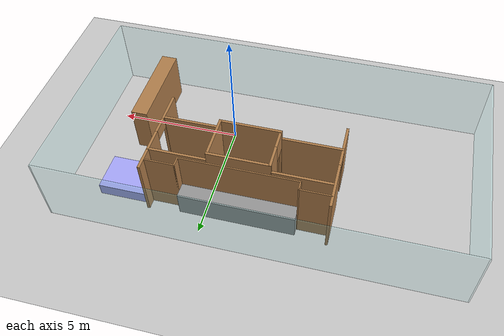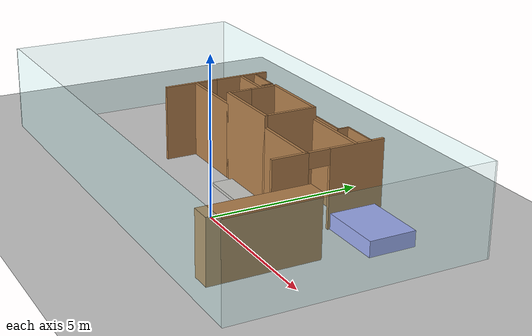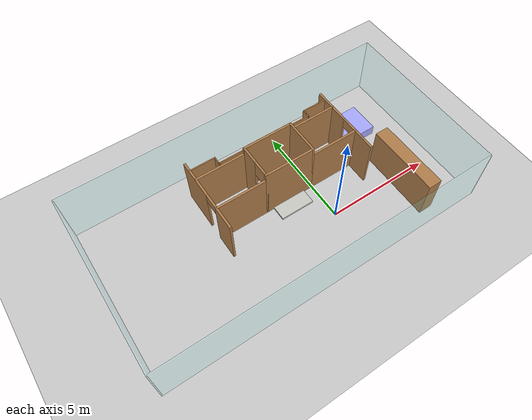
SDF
<sdf version="1.6">
 <world name="default">
  <model name="ground_plane">
   <static>1</static>
   <link name="link">
    <collision name="collision">
     <geometry><plane><normal>0 0 1</normal><size>100 100</size></plane></geometry>
     <surface><friction><ode><mu>100</mu><mu2>50</mu2></ode></friction></surface>
    </collision>
    <visual name="visual">
     <cast_shadows>0</cast_shadows>
     <geometry><plane><normal>0 0 1</normal><size>100 100</size></plane></geometry>
     <material>
      <script><uri>file://media/materials/scripts/gazebo.material</uri><name>Gazebo/Grey</name></script>
     </material>
    </visual>
   </link>
  </model>
  <model name="Farnsworth_House">
   <link name="Wall_0">
    <pose>0 4.05 0 0 -0 0</pose>
    <inertial>
     <mass>1</mass>
     <inertia><ixx>1</ixx><ixy>0</ixy><ixz>0</ixz><iyy>1</iyy><iyz>0</iyz><izz>1</izz></inertia>
    </inertial>
    <visual name="Wall_0_Visual">
     <pose>0 0 1.435 0 -0 0</pose>
     <geometry><box><size>15.9002 0.05 2.87</size></box></geometry>
     <material>
      <script><uri>file://media/materials/scripts/gazebo.material</uri><name>Gazebo/Grey</name></script>
      <ambient>0.6 1 1 1</ambient>
      <shader type="pixel"><normal_map>__default__</normal_map></shader>
      <diffuse>0.7 0.7 0.7 1</diffuse>
      <specular>0.01 0.01 0.01 1</specular>
      <emissive>0 0 0 1</emissive>
     </material>
     <meta><layer>0</layer></meta>
     <transparency>0.85</transparency>
    </visual>
    <collision name="Wall_0_Collision">
     <pose>0 0 1.435 0 -0 0</pose>
     <geometry><box><size>15.9002 0.05 2.87</size></box></geometry>
     <surface>
      <friction>
       <ode><mu>1</mu><mu2>1</mu2><fdir1>0 0 0</fdir1><slip1>0</slip1><slip2>0</slip2></ode>
       <torsional>
        <coefficient>1</coefficient>
        <patch_radius>0</patch_radius>
        <surface_radius>0</surface_radius>
        <use_patch_radius>1</use_patch_radius>
        <ode><slip>0</slip></ode>
       </torsional>
      </friction>
      <bounce><restitution_coefficient>0</restitution_coefficient><threshold>1e+06</threshold></bounce>
      <contact>
       <collide_without_contact>0</collide_without_contact>
       <collide_without_contact_bitmask>1</collide_without_contact_bitmask>
       <collide_bitmask>1</collide_bitmask>
       <ode>
        <soft_cfm>0</soft_cfm>
        <soft_erp>0.2</soft_erp>
        <kp>1e+13</kp>
        <kd>1</kd>
        <max_vel>0.01</max_vel>
        <min_depth>0</min_depth>
       </ode>
       <bullet>
        <split_impulse>1</split_impulse>
        <split_impulse_penetration_threshold>-0.01</split_impulse_penetration_threshold>
        <soft_cfm>0</soft_cfm>
        <soft_erp>0.2</soft_erp>
        <kp>1e+13</kp>
        <kd>1</kd>
       </bullet>
      </contact>
     </surface>
    </collision>
   </link>
   <link name="Wall_1">
    <pose>7.925 0 0 0 0 -1.5708</pose>
    <inertial>
     <mass>1</mass>
     <inertia><ixx>1</ixx><ixy>0</ixy><ixz>0</ixz><iyy>1</iyy><iyz>0</iyz><izz>1</izz></inertia>
    </inertial>
    <visual name="Wall_1_Visual">
     <pose>0 0 1.435 0 -0 0</pose>
     <geometry><box><size>8.15019 0.05 2.87</size></box></geometry>
     <material>
      <script><uri>file://media/materials/scripts/gazebo.material</uri><name>Gazebo/Grey</name></script>
      <ambient>0.6 1 1 1</ambient>
      <shader type="pixel"><normal_map>__default__</normal_map></shader>
      <diffuse>0.7 0.7 0.7 1</diffuse>
      <specular>0.01 0.01 0.01 1</specular>
      <emissive>0 0 0 1</emissive>
     </material>
     <meta><layer>0</layer></meta>
     <transparency>0.85</transparency>
    </visual>
    <collision name="Wall_1_Collision">
     <pose>0 0 1.435 0 -0 0</pose>
     <geometry><box><size>8.15019 0.05 2.87</size></box></geometry>
     <surface>
      <friction>
       <ode><mu>1</mu><mu2>1</mu2><fdir1>0 0 0</fdir1><slip1>0</slip1><slip2>0</slip2></ode>
       <torsional>
        <coefficient>1</coefficient>
        <patch_radius>0</patch_radius>
        <surface_radius>0</surface_radius>
        <use_patch_radius>1</use_patch_radius>
        <ode><slip>0</slip></ode>
       </torsional>
      </friction>
      <bounce><restitution_coefficient>0</restitution_coefficient><threshold>1e+06</threshold></bounce>
      <contact>
       <collide_without_contact>0</collide_without_contact>
       <collide_without_contact_bitmask>1</collide_without_contact_bitmask>
       <collide_bitmask>1</collide_bitmask>
       <ode>
        <soft_cfm>0</soft_cfm>
        <soft_erp>0.2</soft_erp>
        <kp>1e+13</kp>
        <kd>1</kd>
        <max_vel>0.01</max_vel>
        <min_depth>0</min_depth>
       </ode>
       <bullet>
        <split_impulse>1</split_impulse>
        <split_impulse_penetration_threshold>-0.01</split_impulse_penetration_threshold>
        <soft_cfm>0</soft_cfm>
        <soft_erp>0.2</soft_erp>
        <kp>1e+13</kp>
        <kd>1</kd>
       </bullet>
      </contact>
     </surface>
    </collision>
   </link>
   <link name="Wall_10">
    <pose>0.851 0.36 0 0 -0 0</pose>
    <visual name="Wall_10_Visual">
     <pose>0 0 1.435 0 -0 0</pose>
     <geometry><box><size>2.45 0.1 2.87</size></box></geometry>
     <material>
      <script><uri>file://media/materials/scripts/gazebo.material</uri><name>Gazebo/Wood</name></script>
      <ambient>1 1 1 1</ambient>
      <shader type="pixel"/>
      <diffuse>1 1 1 1</diffuse>
      <specular>0.2 0.2 0.2 1</specular>
      <emissive>0 0 0 1</emissive>
     </material>
     <meta><layer>0</layer></meta>
    </visual>
    <collision name="Wall_10_Collision">
     <pose>0 0 1.435 0 -0 0</pose>
     <geometry><box><size>2.45 0.1 2.87</size></box></geometry>
     <surface>
      <friction>
       <ode><mu>1</mu><mu2>1</mu2><fdir1>0 0 0</fdir1><slip1>0</slip1><slip2>0</slip2></ode>
       <torsional>
        <coefficient>1</coefficient>
        <patch_radius>0</patch_radius>
        <surface_radius>0</surface_radius>
        <use_patch_radius>1</use_patch_radius>
        <ode><slip>0</slip></ode>
       </torsional>
      </friction>
      <bounce><restitution_coefficient>0</restitution_coefficient><threshold>1e+06</threshold></bounce>
      <contact>
       <collide_without_contact>0</collide_without_contact>
       <collide_without_contact_bitmask>1</collide_without_contact_bitmask>
       <collide_bitmask>1</collide_bitmask>
       <ode>
        <soft_cfm>0</soft_cfm>
        <soft_erp>0.2</soft_erp>
        <kp>1e+13</kp>
        <kd>1</kd>
        <max_vel>0.01</max_vel>
        <min_depth>0</min_depth>
       </ode>
       <bullet>
        <split_impulse>1</split_impulse>
        <split_impulse_penetration_threshold>-0.01</split_impulse_penetration_threshold>
        <soft_cfm>0</soft_cfm>
        <soft_erp>0.2</soft_erp>
        <kp>1e+13</kp>
        <kd>1</kd>
       </bullet>
      </contact>
     </surface>
    </collision>
   </link>
   <link name="Wall_11">
    <pose>3.179 0.36 0 0 -0 0</pose>
    <visual name="Wall_11_Visual">
     <pose>0 0 1.25 0 -0 0</pose>
     <geometry><box><size>2.406 0.1 2.5</size></box></geometry>
     <material>
      <script><uri>file://media/materials/scripts/gazebo.material</uri><name>Gazebo/Wood</name></script>
      <ambient>1 1 1 1</ambient>
      <shader type="pixel"/>
      <diffuse>1 1 1 1</diffuse>
      <specular>0.2 0.2 0.2 1</specular>
      <emissive>0 0 0 1</emissive>
     </material>
     <meta><layer>0</layer></meta>
    </visual>
    <collision name="Wall_11_Collision">
     <pose>0 0 1.25 0 -0 0</pose>
     <geometry><box><size>2.406 0.1 2.5</size></box></geometry>
     <surface>
      <friction>
       <ode><mu>1</mu><mu2>1</mu2><fdir1>0 0 0</fdir1><slip1>0</slip1><slip2>0</slip2></ode>
       <torsional>
        <coefficient>1</coefficient>
        <patch_radius>0</patch_radius>
        <surface_radius>0</surface_radius>
        <use_patch_radius>1</use_patch_radius>
        <ode><slip>0</slip></ode>
       </torsional>
      </friction>
      <bounce><restitution_coefficient>0</restitution_coefficient><threshold>1e+06</threshold></bounce>
      <contact>
       <collide_without_contact>0</collide_without_contact>
       <collide_without_contact_bitmask>1</collide_without_contact_bitmask>
       <collide_bitmask>1</collide_bitmask>
       <ode>
        <soft_cfm>0</soft_cfm>
        <soft_erp>0.2</soft_erp>
        <kp>1e+13</kp>
        <kd>1</kd>
        <max_vel>0.01</max_vel>
        <min_depth>0</min_depth>
       </ode>
       <bullet>
        <split_impulse>1</split_impulse>
        <split_impulse_penetration_threshold>-0.01</split_impulse_penetration_threshold>
        <soft_cfm>0</soft_cfm>
        <soft_erp>0.2</soft_erp>
        <kp>1e+13</kp>
        <kd>1</kd>
       </bullet>
      </contact>
     </surface>
    </collision>
   </link>
   <link name="Wall_13">
    <pose>0.851 2.013 0 0 -0 0</pose>
    <visual name="Wall_13_Visual">
     <pose>0 0 1.435 0 -0 0</pose>
     <geometry><box><size>2.45 0.1 2.87</size></box></geometry>
     <material>
      <script><uri>file://media/materials/scripts/gazebo.material</uri><name>Gazebo/Wood</name></script>
      <ambient>1 1 1 1</ambient>
      <shader type="pixel"/>
      <diffuse>1 1 1 1</diffuse>
      <specular>0.2 0.2 0.2 1</specular>
      <emissive>0 0 0 1</emissive>
     </material>
     <meta><layer>0</layer></meta>
    </visual>
    <collision name="Wall_13_Collision">
     <pose>0 0 1.435 0 -0 0</pose>
     <geometry><box><size>2.45 0.1 2.87</size></box></geometry>
     <surface>
      <friction>
       <ode><mu>1</mu><mu2>1</mu2><fdir1>0 0 0</fdir1><slip1>0</slip1><slip2>0</slip2></ode>
       <torsional>
        <coefficient>1</coefficient>
        <patch_radius>0</patch_radius>
        <surface_radius>0</surface_radius>
        <use_patch_radius>1</use_patch_radius>
        <ode><slip>0</slip></ode>
       </torsional>
      </friction>
      <bounce><restitution_coefficient>0</restitution_coefficient><threshold>1e+06</threshold></bounce>
      <contact>
       <collide_without_contact>0</collide_without_contact>
       <collide_without_contact_bitmask>1</collide_without_contact_bitmask>
       <collide_bitmask>1</collide_bitmask>
       <ode>
        <soft_cfm>0</soft_cfm>
        <soft_erp>0.2</soft_erp>
        <kp>1e+13</kp>
        <kd>1</kd>
        <max_vel>0.01</max_vel>
        <min_depth>0</min_depth>
       </ode>
       <bullet>
        <split_impulse>1</split_impulse>
        <split_impulse_penetration_threshold>-0.01</split_impulse_penetration_threshold>
        <soft_cfm>0</soft_cfm>
        <soft_erp>0.2</soft_erp>
        <kp>1e+13</kp>
        <kd>1</kd>
       </bullet>
      </contact>
     </surface>
    </collision>
   </link>
   <link name="Wall_14">
    <pose>2.026 1.1865 0 0 0 -1.5708</pose>
    <visual name="Wall_14_Visual">
     <pose>0 0 1.435 0 -0 0</pose>
     <geometry><box><size>1.753 0.1 2.87</size></box></geometry>
     <material>
      <script><uri>file://media/materials/scripts/gazebo.material</uri><name>Gazebo/Wood</name></script>
      <ambient>1 1 1 1</ambient>
      <shader type="pixel"/>
      <diffuse>1 1 1 1</diffuse>
      <specular>0.2 0.2 0.2 1</specular>
      <emissive>0 0 0 1</emissive>
     </material>
     <meta><layer>0</layer></meta>
    </visual>
    <collision name="Wall_14_Collision">
     <pose>0 0 1.435 0 -0 0</pose>
     <geometry><box><size>1.753 0.1 2.87</size></box></geometry>
     <surface>
      <friction>
       <ode><mu>1</mu><mu2>1</mu2><fdir1>0 0 0</fdir1><slip1>0</slip1><slip2>0</slip2></ode>
       <torsional>
        <coefficient>1</coefficient>
        <patch_radius>0</patch_radius>
        <surface_radius>0</surface_radius>
        <use_patch_radius>1</use_patch_radius>
        <ode><slip>0</slip></ode>
       </torsional>
      </friction>
      <bounce><restitution_coefficient>0</restitution_coefficient><threshold>1e+06</threshold></bounce>
      <contact>
       <collide_without_contact>0</collide_without_contact>
       <collide_without_contact_bitmask>1</collide_without_contact_bitmask>
       <collide_bitmask>1</collide_bitmask>
       <ode>
        <soft_cfm>0</soft_cfm>
        <soft_erp>0.2</soft_erp>
        <kp>1e+13</kp>
        <kd>1</kd>
        <max_vel>0.01</max_vel>
        <min_depth>0</min_depth>
       </ode>
       <bullet>
        <split_impulse>1</split_impulse>
        <split_impulse_penetration_threshold>-0.01</split_impulse_penetration_threshold>
        <soft_cfm>0</soft_cfm>
        <soft_erp>0.2</soft_erp>
        <kp>1e+13</kp>
        <kd>1</kd>
       </bullet>
      </contact>
     </surface>
    </collision>
   </link>
   <link name="Wall_16">
    <pose>-0.324 1.1865 0 0 0 -1.5708</pose>
    <inertial>
     <mass>1</mass>
     <inertia><ixx>1</ixx><ixy>0</ixy><ixz>0</ixz><iyy>1</iyy><iyz>0</iyz><izz>1</izz></inertia>
    </inertial>
    <visual name="Wall_16_Visual_0">
     <pose>-0.414 0 1.435 0 -0 0</pose>
     <geometry><box><size>0.925 0.1 2.87</size></box></geometry>
     <material>
      <script><uri>file://media/materials/scripts/gazebo.material</uri><name>Gazebo/Wood</name></script>
      <ambient>1 1 1 1</ambient>
      <shader type="pixel"><normal_map>__default__</normal_map></shader>
      <diffuse>1 1 1 1</diffuse>
      <specular>0.2 0.2 0.2 1</specular>
      <emissive>0 0 0 1</emissive>
     </material>
     <meta><layer>0</layer></meta>
    </visual>
    <visual name="Wall_16_Visual_1">
     <pose>0.8125 0 1.435 0 -0 0</pose>
     <geometry><box><size>0.128 0.1 2.87</size></box></geometry>
     <material>
      <script><uri>file://media/materials/scripts/gazebo.material</uri><name>Gazebo/Wood</name></script>
      <ambient>1 1 1 1</ambient>
      <shader type="pixel"><normal_map>__default__</normal_map></shader>
      <diffuse>1 1 1 1</diffuse>
      <specular>0.2 0.2 0.2 1</specular>
      <emissive>0 0 0 1</emissive>
     </material>
     <meta><layer>0</layer></meta>
    </visual>
    <visual name="Wall_16_Visual_3">
     <pose>0.3985 0 2.435 0 -0 0</pose>
     <geometry><box><size>0.7 0.1 0.87</size></box></geometry>
     <material>
      <script><uri>file://media/materials/scripts/gazebo.material</uri><name>Gazebo/Wood</name></script>
      <ambient>1 1 1 1</ambient>
      <shader type="pixel"><normal_map>__default__</normal_map></shader>
      <diffuse>1 1 1 1</diffuse>
      <specular>0.2 0.2 0.2 1</specular>
      <emissive>0 0 0 1</emissive>
     </material>
     <meta><layer>0</layer></meta>
    </visual>
    <collision name="Wall_16_Collision_0">
     <pose>-0.414 0 1.435 0 -0 0</pose>
     <geometry><box><size>0.925 0.1 2.87</size></box></geometry>
     <surface>
      <friction>
       <ode><mu>1</mu><mu2>1</mu2><fdir1>0 0 0</fdir1><slip1>0</slip1><slip2>0</slip2></ode>
       <torsional>
        <coefficient>1</coefficient>
        <patch_radius>0</patch_radius>
        <surface_radius>0</surface_radius>
        <use_patch_radius>1</use_patch_radius>
        <ode><slip>0</slip></ode>
       </torsional>
      </friction>
      <bounce><restitution_coefficient>0</restitution_coefficient><threshold>1e+06</threshold></bounce>
      <contact>
       <collide_without_contact>0</collide_without_contact>
       <collide_without_contact_bitmask>1</collide_without_contact_bitmask>
       <collide_bitmask>1</collide_bitmask>
       <ode>
        <soft_cfm>0</soft_cfm>
        <soft_erp>0.2</soft_erp>
        <kp>1e+13</kp>
        <kd>1</kd>
        <max_vel>0.01</max_vel>
        <min_depth>0</min_depth>
       </ode>
       <bullet>
        <split_impulse>1</split_impulse>
        <split_impulse_penetration_threshold>-0.01</split_impulse_penetration_threshold>
        <soft_cfm>0</soft_cfm>
        <soft_erp>0.2</soft_erp>
        <kp>1e+13</kp>
        <kd>1</kd>
       </bullet>
      </contact>
     </surface>
    </collision>
    <collision name="Wall_16_Collision_1">
     <pose>0.8125 0 1.435 0 -0 0</pose>
     <geometry><box><size>0.128 0.1 2.87</size></box></geometry>
     <surface>
      <friction>
       <ode><mu>1</mu><mu2>1</mu2><fdir1>0 0 0</fdir1><slip1>0</slip1><slip2>0</slip2></ode>
       <torsional>
        <coefficient>1</coefficient>
        <patch_radius>0</patch_radius>
        <surface_radius>0</surface_radius>
        <use_patch_radius>1</use_patch_radius>
        <ode><slip>0</slip></ode>
       </torsional>
      </friction>
      <bounce><restitution_coefficient>0</restitution_coefficient><threshold>1e+06</threshold></bounce>
      <contact>
       <collide_without_contact>0</collide_without_contact>
       <collide_without_contact_bitmask>1</collide_without_contact_bitmask>
       <collide_bitmask>1</collide_bitmask>
       <ode>
        <soft_cfm>0</soft_cfm>
        <soft_erp>0.2</soft_erp>
        <kp>1e+13</kp>
        <kd>1</kd>
        <max_vel>0.01</max_vel>
        <min_depth>0</min_depth>
       </ode>
       <bullet>
        <split_impulse>1</split_impulse>
        <split_impulse_penetration_threshold>-0.01</split_impulse_penetration_threshold>
        <soft_cfm>0</soft_cfm>
        <soft_erp>0.2</soft_erp>
        <kp>1e+13</kp>
        <kd>1</kd>
       </bullet>
      </contact>
     </surface>
    </collision>
    <collision name="Wall_16_Collision_3">
     <pose>0.3985 0 2.435 0 -0 0</pose>
     <geometry><box><size>0.7 0.1 0.87</size></box></geometry>
     <surface>
      <friction>
       <ode><mu>1</mu><mu2>1</mu2><fdir1>0 0 0</fdir1><slip1>0</slip1><slip2>0</slip2></ode>
       <torsional>
        <coefficient>1</coefficient>
        <patch_radius>0</patch_radius>
        <surface_radius>0</surface_radius>
        <use_patch_radius>1</use_patch_radius>
        <ode><slip>0</slip></ode>
       </torsional>
      </friction>
      <bounce><restitution_coefficient>0</restitution_coefficient><threshold>1e+06</threshold></bounce>
      <contact>
       <collide_without_contact>0</collide_without_contact>
       <collide_without_contact_bitmask>1</collide_without_contact_bitmask>
       <collide_bitmask>1</collide_bitmask>
       <ode>
        <soft_cfm>0</soft_cfm>
        <soft_erp>0.2</soft_erp>
        <kp>1e+13</kp>
        <kd>1</kd>
        <max_vel>0.01</max_vel>
        <min_depth>0</min_depth>
       </ode>
       <bullet>
        <split_impulse>1</split_impulse>
        <split_impulse_penetration_threshold>-0.01</split_impulse_penetration_threshold>
        <soft_cfm>0</soft_cfm>
        <soft_erp>0.2</soft_erp>
        <kp>1e+13</kp>
        <kd>1</kd>
       </bullet>
      </contact>
     </surface>
    </collision>
   </link>
   <link name="Wall_18">
    <pose>-1.499 2.013 0 0 -0 3.14159</pose>
    <visual name="Wall_18_Visual">
     <pose>0 0 1.25 0 -0 0</pose>
     <geometry><box><size>2.45 0.1 2.5</size></box></geometry>
     <material>
      <script><uri>file://media/materials/scripts/gazebo.material</uri><name>Gazebo/Wood</name></script>
      <ambient>1 1 1 1</ambient>
      <shader type="pixel"/>
      <diffuse>1 1 1 1</diffuse>
      <specular>0.2 0.2 0.2 1</specular>
      <emissive>0 0 0 1</emissive>
     </material>
     <meta><layer>0</layer></meta>
    </visual>
    <collision name="Wall_18_Collision">
     <pose>0 0 1.25 0 -0 0</pose>
     <geometry><box><size>2.45 0.1 2.5</size></box></geometry>
     <surface>
      <friction>
       <ode><mu>1</mu><mu2>1</mu2><fdir1>0 0 0</fdir1><slip1>0</slip1><slip2>0</slip2></ode>
       <torsional>
        <coefficient>1</coefficient>
        <patch_radius>0</patch_radius>
        <surface_radius>0</surface_radius>
        <use_patch_radius>1</use_patch_radius>
        <ode><slip>0</slip></ode>
       </torsional>
      </friction>
      <bounce><restitution_coefficient>0</restitution_coefficient><threshold>1e+06</threshold></bounce>
      <contact>
       <collide_without_contact>0</collide_without_contact>
       <collide_without_contact_bitmask>1</collide_without_contact_bitmask>
       <collide_bitmask>1</collide_bitmask>
       <ode>
        <soft_cfm>0</soft_cfm>
        <soft_erp>0.2</soft_erp>
        <kp>1e+13</kp>
        <kd>1</kd>
        <max_vel>0.01</max_vel>
        <min_depth>0</min_depth>
       </ode>
       <bullet>
        <split_impulse>1</split_impulse>
        <split_impulse_penetration_threshold>-0.01</split_impulse_penetration_threshold>
        <soft_cfm>0</soft_cfm>
        <soft_erp>0.2</soft_erp>
        <kp>1e+13</kp>
        <kd>1</kd>
       </bullet>
      </contact>
     </surface>
    </collision>
   </link>
   <link name="Wall_2">
    <pose>0 -4.05 0 0 -0 3.14159</pose>
    <inertial>
     <mass>1</mass>
     <inertia><ixx>1</ixx><ixy>0</ixy><ixz>0</ixz><iyy>1</iyy><iyz>0</iyz><izz>1</izz></inertia>
    </inertial>
    <visual name="Wall_2_Visual">
     <pose>0 0 1.435 0 -0 0</pose>
     <geometry><box><size>15.8998 0.05 2.87</size></box></geometry>
     <material>
      <script><uri>file://media/materials/scripts/gazebo.material</uri><name>Gazebo/Grey</name></script>
      <ambient>0.6 1 1 1</ambient>
      <shader type="pixel"><normal_map>__default__</normal_map></shader>
      <diffuse>0.7 0.7 0.7 1</diffuse>
      <specular>0.01 0.01 0.01 1</specular>
      <emissive>0 0 0 1</emissive>
     </material>
     <meta><layer>0</layer></meta>
     <transparency>0.85</transparency>
    </visual>
    <collision name="Wall_2_Collision">
     <pose>0 0 1.435 0 -0 0</pose>
     <geometry><box><size>15.8998 0.05 2.87</size></box></geometry>
     <surface>
      <friction>
       <ode><mu>1</mu><mu2>1</mu2><fdir1>0 0 0</fdir1><slip1>0</slip1><slip2>0</slip2></ode>
       <torsional>
        <coefficient>1</coefficient>
        <patch_radius>0</patch_radius>
        <surface_radius>0</surface_radius>
        <use_patch_radius>1</use_patch_radius>
        <ode><slip>0</slip></ode>
       </torsional>
      </friction>
      <bounce><restitution_coefficient>0</restitution_coefficient><threshold>1e+06</threshold></bounce>
      <contact>
       <collide_without_contact>0</collide_without_contact>
       <collide_without_contact_bitmask>1</collide_without_contact_bitmask>
       <collide_bitmask>1</collide_bitmask>
       <ode>
        <soft_cfm>0</soft_cfm>
        <soft_erp>0.2</soft_erp>
        <kp>1e+13</kp>
        <kd>1</kd>
        <max_vel>0.01</max_vel>
        <min_depth>0</min_depth>
       </ode>
       <bullet>
        <split_impulse>1</split_impulse>
        <split_impulse_penetration_threshold>-0.01</split_impulse_penetration_threshold>
        <soft_cfm>0</soft_cfm>
        <soft_erp>0.2</soft_erp>
        <kp>1e+13</kp>
        <kd>1</kd>
       </bullet>
      </contact>
     </surface>
    </collision>
   </link>
   <link name="Wall_20">
    <pose>3.175 2.013 0 0 -0 0</pose>
    <visual name="Wall_20_Visual">
     <pose>0 0 1.25 0 -0 0</pose>
     <geometry><box><size>2.398 0.1 2.5</size></box></geometry>
     <material>
      <script><uri>file://media/materials/scripts/gazebo.material</uri><name>Gazebo/Wood</name></script>
      <ambient>1 1 1 1</ambient>
      <shader type="pixel"/>
      <diffuse>1 1 1 1</diffuse>
      <specular>0.2 0.2 0.2 1</specular>
      <emissive>0 0 0 1</emissive>
     </material>
     <meta><layer>0</layer></meta>
    </visual>
    <collision name="Wall_20_Collision">
     <pose>0 0 1.25 0 -0 0</pose>
     <geometry><box><size>2.398 0.1 2.5</size></box></geometry>
     <surface>
      <friction>
       <ode><mu>1</mu><mu2>1</mu2><fdir1>0 0 0</fdir1><slip1>0</slip1><slip2>0</slip2></ode>
       <torsional>
        <coefficient>1</coefficient>
        <patch_radius>0</patch_radius>
        <surface_radius>0</surface_radius>
        <use_patch_radius>1</use_patch_radius>
        <ode><slip>0</slip></ode>
       </torsional>
      </friction>
      <bounce><restitution_coefficient>0</restitution_coefficient><threshold>1e+06</threshold></bounce>
      <contact>
       <collide_without_contact>0</collide_without_contact>
       <collide_without_contact_bitmask>1</collide_without_contact_bitmask>
       <collide_bitmask>1</collide_bitmask>
       <ode>
        <soft_cfm>0</soft_cfm>
        <soft_erp>0.2</soft_erp>
        <kp>1e+13</kp>
        <kd>1</kd>
        <max_vel>0.01</max_vel>
        <min_depth>0</min_depth>
       </ode>
       <bullet>
        <split_impulse>1</split_impulse>
        <split_impulse_penetration_threshold>-0.01</split_impulse_penetration_threshold>
        <soft_cfm>0</soft_cfm>
        <soft_erp>0.2</soft_erp>
        <kp>1e+13</kp>
        <kd>1</kd>
       </bullet>
      </contact>
     </surface>
    </collision>
   </link>
   <link name="Wall_27">
    <pose>-2.084 2.54 0 0 -0 0</pose>
    <visual name="Wall_27_Visual">
     <pose>0 0 1.25 0 -0 0</pose>
     <geometry><box><size>1.25 0.05 2.5</size></box></geometry>
     <material>
      <script><uri>file://media/materials/scripts/gazebo.material</uri><name>Gazebo/Wood</name></script>
      <ambient>1 1 1 1</ambient>
      <shader type="pixel"/>
      <diffuse>1 1 1 1</diffuse>
      <specular>0.2 0.2 0.2 1</specular>
      <emissive>0 0 0 1</emissive>
     </material>
     <meta><layer>0</layer></meta>
    </visual>
    <collision name="Wall_27_Collision">
     <pose>0 0 1.25 0 -0 0</pose>
     <geometry><box><size>1.25 0.05 2.5</size></box></geometry>
     <surface>
      <friction>
       <ode><mu>1</mu><mu2>1</mu2><fdir1>0 0 0</fdir1><slip1>0</slip1><slip2>0</slip2></ode>
       <torsional>
        <coefficient>1</coefficient>
        <patch_radius>0</patch_radius>
        <surface_radius>0</surface_radius>
        <use_patch_radius>1</use_patch_radius>
        <ode><slip>0</slip></ode>
       </torsional>
      </friction>
      <bounce><restitution_coefficient>0</restitution_coefficient><threshold>1e+06</threshold></bounce>
      <contact>
       <collide_without_contact>0</collide_without_contact>
       <collide_without_contact_bitmask>1</collide_without_contact_bitmask>
       <collide_bitmask>1</collide_bitmask>
       <ode>
        <soft_cfm>0</soft_cfm>
        <soft_erp>0.2</soft_erp>
        <kp>1e+13</kp>
        <kd>1</kd>
        <max_vel>0.01</max_vel>
        <min_depth>0</min_depth>
       </ode>
       <bullet>
        <split_impulse>1</split_impulse>
        <split_impulse_penetration_threshold>-0.01</split_impulse_penetration_threshold>
        <soft_cfm>0</soft_cfm>
        <soft_erp>0.2</soft_erp>
        <kp>1e+13</kp>
        <kd>1</kd>
       </bullet>
      </contact>
     </surface>
    </collision>
   </link>
   <link name="Wall_29">
    <pose>3.724 2.54 0 0 -0 0</pose>
    <visual name="Wall_29_Visual">
     <pose>0 0 1.25 0 -0 0</pose>
     <geometry><box><size>1.25 0.05 2.5</size></box></geometry>
     <material>
      <script><uri>file://media/materials/scripts/gazebo.material</uri><name>Gazebo/Wood</name></script>
      <ambient>1 1 1 1</ambient>
      <shader type="pixel"/>
      <diffuse>1 1 1 1</diffuse>
      <specular>0.2 0.2 0.2 1</specular>
      <emissive>0 0 0 1</emissive>
     </material>
     <meta><layer>0</layer></meta>
    </visual>
    <collision name="Wall_29_Collision">
     <pose>0 0 1.25 0 -0 0</pose>
     <geometry><box><size>1.25 0.05 2.5</size></box></geometry>
     <surface>
      <friction>
       <ode><mu>1</mu><mu2>1</mu2><fdir1>0 0 0</fdir1><slip1>0</slip1><slip2>0</slip2></ode>
       <torsional>
        <coefficient>1</coefficient>
        <patch_radius>0</patch_radius>
        <surface_radius>0</surface_radius>
        <use_patch_radius>1</use_patch_radius>
        <ode><slip>0</slip></ode>
       </torsional>
      </friction>
      <bounce><restitution_coefficient>0</restitution_coefficient><threshold>1e+06</threshold></bounce>
      <contact>
       <collide_without_contact>0</collide_without_contact>
       <collide_without_contact_bitmask>1</collide_without_contact_bitmask>
       <collide_bitmask>1</collide_bitmask>
       <ode>
        <soft_cfm>0</soft_cfm>
        <soft_erp>0.2</soft_erp>
        <kp>1e+13</kp>
        <kd>1</kd>
        <max_vel>0.01</max_vel>
        <min_depth>0</min_depth>
       </ode>
       <bullet>
        <split_impulse>1</split_impulse>
        <split_impulse_penetration_threshold>-0.01</split_impulse_penetration_threshold>
        <soft_cfm>0</soft_cfm>
        <soft_erp>0.2</soft_erp>
        <kp>1e+13</kp>
        <kd>1</kd>
       </bullet>
      </contact>
     </surface>
    </collision>
   </link>
   <link name="Wall_3">
    <pose>-7.925 0 0 0 -0 1.5708</pose>
    <inertial>
     <mass>1</mass>
     <inertia><ixx>1</ixx><ixy>0</ixy><ixz>0</ixz><iyy>1</iyy><iyz>0</iyz><izz>1</izz></inertia>
    </inertial>
    <visual name="Wall_3_Visual_0">
     <pose>0 0 1.435 0 -0 0</pose>
     <geometry><box><size>8.15019 0.05 2.87</size></box></geometry>
     <material>
      <script><uri>file://media/materials/scripts/gazebo.material</uri><name>Gazebo/Grey</name></script>
      <ambient>0.6 1 1 1</ambient>
      <shader type="pixel"><normal_map>__default__</normal_map></shader>
      <diffuse>0.7 0.7 0.7 1</diffuse>
      <specular>0.01 0.01 0.01 1</specular>
      <emissive>0 0 0 1</emissive>
     </material>
     <meta><layer>0</layer></meta>
     <transparency>0.85</transparency>
    </visual>
    <collision name="Wall_3_Collision_0">
     <pose>0 0 1.435 0 -0 0</pose>
     <geometry><box><size>8.15019 0.05 2.87</size></box></geometry>
     <surface>
      <friction>
       <ode><mu>1</mu><mu2>1</mu2><fdir1>0 0 0</fdir1><slip1>0</slip1><slip2>0</slip2></ode>
       <torsional>
        <coefficient>1</coefficient>
        <patch_radius>0</patch_radius>
        <surface_radius>0</surface_radius>
        <use_patch_radius>1</use_patch_radius>
        <ode><slip>0</slip></ode>
       </torsional>
      </friction>
      <bounce><restitution_coefficient>0</restitution_coefficient><threshold>1e+06</threshold></bounce>
      <contact>
       <collide_without_contact>0</collide_without_contact>
       <collide_without_contact_bitmask>1</collide_without_contact_bitmask>
       <collide_bitmask>1</collide_bitmask>
       <ode>
        <soft_cfm>0</soft_cfm>
        <soft_erp>0.2</soft_erp>
        <kp>1e+13</kp>
        <kd>1</kd>
        <max_vel>0.01</max_vel>
        <min_depth>0</min_depth>
       </ode>
       <bullet>
        <split_impulse>1</split_impulse>
        <split_impulse_penetration_threshold>-0.01</split_impulse_penetration_threshold>
        <soft_cfm>0</soft_cfm>
        <soft_erp>0.2</soft_erp>
        <kp>1e+13</kp>
        <kd>1</kd>
       </bullet>
      </contact>
     </surface>
    </collision>
   </link>
   <link name="Wall_31">
    <pose>-1.484 2.365 0 0 0 -1.5708</pose>
    <visual name="Wall_31_Visual">
     <pose>0 0 1.25 0 -0 0</pose>
     <geometry><box><size>0.4 0.05 2.5</size></box></geometry>
     <material>
      <script><uri>file://media/materials/scripts/gazebo.material</uri><name>Gazebo/Wood</name></script>
      <ambient>1 1 1 1</ambient>
      <shader type="pixel"/>
      <diffuse>1 1 1 1</diffuse>
      <specular>0.2 0.2 0.2 1</specular>
      <emissive>0 0 0 1</emissive>
     </material>
     <meta><layer>0</layer></meta>
    </visual>
    <collision name="Wall_31_Collision">
     <pose>0 0 1.25 0 -0 0</pose>
     <geometry><box><size>0.4 0.05 2.5</size></box></geometry>
     <surface>
      <friction>
       <ode><mu>1</mu><mu2>1</mu2><fdir1>0 0 0</fdir1><slip1>0</slip1><slip2>0</slip2></ode>
       <torsional>
        <coefficient>1</coefficient>
        <patch_radius>0</patch_radius>
        <surface_radius>0</surface_radius>
        <use_patch_radius>1</use_patch_radius>
        <ode><slip>0</slip></ode>
       </torsional>
      </friction>
      <bounce><restitution_coefficient>0</restitution_coefficient><threshold>1e+06</threshold></bounce>
      <contact>
       <collide_without_contact>0</collide_without_contact>
       <collide_without_contact_bitmask>1</collide_without_contact_bitmask>
       <collide_bitmask>1</collide_bitmask>
       <ode>
        <soft_cfm>0</soft_cfm>
        <soft_erp>0.2</soft_erp>
        <kp>1e+13</kp>
        <kd>1</kd>
        <max_vel>0.01</max_vel>
        <min_depth>0</min_depth>
       </ode>
       <bullet>
        <split_impulse>1</split_impulse>
        <split_impulse_penetration_threshold>-0.01</split_impulse_penetration_threshold>
        <soft_cfm>0</soft_cfm>
        <soft_erp>0.2</soft_erp>
        <kp>1e+13</kp>
        <kd>1</kd>
       </bullet>
      </contact>
     </surface>
    </collision>
   </link>
   <link name="Wall_32">
    <pose>0.82 2.19 0 0 -0 0</pose>
    <visual name="Wall_32_Visual">
     <pose>0 0 1.25 0 -0 0</pose>
     <geometry><box><size>4.658 0.05 2.5</size></box></geometry>
     <material>
      <script><uri>file://media/materials/scripts/gazebo.material</uri><name>Gazebo/Wood</name></script>
      <ambient>1 1 1 1</ambient>
      <shader type="pixel"/>
      <diffuse>1 1 1 1</diffuse>
      <specular>0.2 0.2 0.2 1</specular>
      <emissive>0 0 0 1</emissive>
     </material>
     <meta><layer>0</layer></meta>
    </visual>
    <collision name="Wall_32_Collision">
     <pose>0 0 1.25 0 -0 0</pose>
     <geometry><box><size>4.658 0.05 2.5</size></box></geometry>
     <surface>
      <friction>
       <ode><mu>1</mu><mu2>1</mu2><fdir1>0 0 0</fdir1><slip1>0</slip1><slip2>0</slip2></ode>
       <torsional>
        <coefficient>1</coefficient>
        <patch_radius>0</patch_radius>
        <surface_radius>0</surface_radius>
        <use_patch_radius>1</use_patch_radius>
        <ode><slip>0</slip></ode>
       </torsional>
      </friction>
      <bounce><restitution_coefficient>0</restitution_coefficient><threshold>1e+06</threshold></bounce>
      <contact>
       <collide_without_contact>0</collide_without_contact>
       <collide_without_contact_bitmask>1</collide_without_contact_bitmask>
       <collide_bitmask>1</collide_bitmask>
       <ode>
        <soft_cfm>0</soft_cfm>
        <soft_erp>0.2</soft_erp>
        <kp>1e+13</kp>
        <kd>1</kd>
        <max_vel>0.01</max_vel>
        <min_depth>0</min_depth>
       </ode>
       <bullet>
        <split_impulse>1</split_impulse>
        <split_impulse_penetration_threshold>-0.01</split_impulse_penetration_threshold>
        <soft_cfm>0</soft_cfm>
        <soft_erp>0.2</soft_erp>
        <kp>1e+13</kp>
        <kd>1</kd>
       </bullet>
      </contact>
     </surface>
    </collision>
   </link>
   <link name="Wall_33">
    <pose>3.124 2.365 0 0 -0 1.5708</pose>
    <visual name="Wall_33_Visual">
     <pose>0 0 1.25 0 -0 0</pose>
     <geometry><box><size>0.4 0.05 2.5</size></box></geometry>
     <material>
      <script><uri>file://media/materials/scripts/gazebo.material</uri><name>Gazebo/Wood</name></script>
      <ambient>1 1 1 1</ambient>
      <shader type="pixel"/>
      <diffuse>1 1 1 1</diffuse>
      <specular>0.2 0.2 0.2 1</specular>
      <emissive>0 0 0 1</emissive>
     </material>
     <meta><layer>0</layer></meta>
    </visual>
    <collision name="Wall_33_Collision">
     <pose>0 0 1.25 0 -0 0</pose>
     <geometry><box><size>0.4 0.05 2.5</size></box></geometry>
     <surface>
      <friction>
       <ode><mu>1</mu><mu2>1</mu2><fdir1>0 0 0</fdir1><slip1>0</slip1><slip2>0</slip2></ode>
       <torsional>
        <coefficient>1</coefficient>
        <patch_radius>0</patch_radius>
        <surface_radius>0</surface_radius>
        <use_patch_radius>1</use_patch_radius>
        <ode><slip>0</slip></ode>
       </torsional>
      </friction>
      <bounce><restitution_coefficient>0</restitution_coefficient><threshold>1e+06</threshold></bounce>
      <contact>
       <collide_without_contact>0</collide_without_contact>
       <collide_without_contact_bitmask>1</collide_without_contact_bitmask>
       <collide_bitmask>1</collide_bitmask>
       <ode>
        <soft_cfm>0</soft_cfm>
        <soft_erp>0.2</soft_erp>
        <kp>1e+13</kp>
        <kd>1</kd>
        <max_vel>0.01</max_vel>
        <min_depth>0</min_depth>
       </ode>
       <bullet>
        <split_impulse>1</split_impulse>
        <split_impulse_penetration_threshold>-0.01</split_impulse_penetration_threshold>
        <soft_cfm>0</soft_cfm>
        <soft_erp>0.2</soft_erp>
        <kp>1e+13</kp>
        <kd>1</kd>
       </bullet>
      </contact>
     </surface>
    </collision>
   </link>
   <link name="Wall_37">
    <pose>0.8245 2.534 0 0 -0 0</pose>
    <visual name="Wall_37_Visual">
     <pose>0 0 0.5 0 -0 0</pose>
     <geometry><box><size>4.55152 0.6 1</size></box></geometry>
     <material>
      <script><uri>file://media/materials/scripts/gazebo.material</uri><name>Gazebo/Grey</name></script>
      <ambient>1 1 1 1</ambient>
      <shader type="pixel"/>
      <diffuse>0.7 0.7 0.7 1</diffuse>
      <specular>0.01 0.01 0.01 1</specular>
      <emissive>0 0 0 1</emissive>
     </material>
     <meta><layer>0</layer></meta>
    </visual>
    <collision name="Wall_37_Collision">
     <pose>0 0 0.5 0 -0 0</pose>
     <geometry><box><size>4.55152 0.6 1</size></box></geometry>
     <surface>
      <friction>
       <ode><mu>1</mu><mu2>1</mu2><fdir1>0 0 0</fdir1><slip1>0</slip1><slip2>0</slip2></ode>
       <torsional>
        <coefficient>1</coefficient>
        <patch_radius>0</patch_radius>
        <surface_radius>0</surface_radius>
        <use_patch_radius>1</use_patch_radius>
        <ode><slip>0</slip></ode>
       </torsional>
      </friction>
      <bounce><restitution_coefficient>0</restitution_coefficient><threshold>1e+06</threshold></bounce>
      <contact>
       <collide_without_contact>0</collide_without_contact>
       <collide_without_contact_bitmask>1</collide_without_contact_bitmask>
       <collide_bitmask>1</collide_bitmask>
       <ode>
        <soft_cfm>0</soft_cfm>
        <soft_erp>0.2</soft_erp>
        <kp>1e+13</kp>
        <kd>1</kd>
        <max_vel>0.01</max_vel>
        <min_depth>0</min_depth>
       </ode>
       <bullet>
        <split_impulse>1</split_impulse>
        <split_impulse_penetration_threshold>-0.01</split_impulse_penetration_threshold>
        <soft_cfm>0</soft_cfm>
        <soft_erp>0.2</soft_erp>
        <kp>1e+13</kp>
        <kd>1</kd>
       </bullet>
      </contact>
     </surface>
    </collision>
   </link>
   <link name="Wall_39">
    <pose>0.828 -0.04 0 0 -0 0</pose>
    <visual name="Wall_39_Visual">
     <pose>0 0 0.05 0 -0 0</pose>
     <geometry><box><size>1.63986 0.7 0.1</size></box></geometry>
     <material>
      <script><uri>file://media/materials/scripts/gazebo.material</uri><name>Gazebo/CeilingTiled</name></script>
      <ambient>1 1 1 1</ambient>
      <shader type="pixel"/>
      <diffuse>1 1 1 1</diffuse>
      <specular>0 0 0 1</specular>
      <emissive>0 0 0 1</emissive>
     </material>
     <meta><layer>0</layer></meta>
    </visual>
    <collision name="Wall_39_Collision">
     <pose>0 0 0.05 0 -0 0</pose>
     <geometry><box><size>1.63986 0.7 0.1</size></box></geometry>
     <surface>
      <friction>
       <ode><mu>1</mu><mu2>1</mu2><fdir1>0 0 0</fdir1><slip1>0</slip1><slip2>0</slip2></ode>
       <torsional>
        <coefficient>1</coefficient>
        <patch_radius>0</patch_radius>
        <surface_radius>0</surface_radius>
        <use_patch_radius>1</use_patch_radius>
        <ode><slip>0</slip></ode>
       </torsional>
      </friction>
      <bounce><restitution_coefficient>0</restitution_coefficient><threshold>1e+06</threshold></bounce>
      <contact>
       <collide_without_contact>0</collide_without_contact>
       <collide_without_contact_bitmask>1</collide_without_contact_bitmask>
       <collide_bitmask>1</collide_bitmask>
       <ode>
        <soft_cfm>0</soft_cfm>
        <soft_erp>0.2</soft_erp>
        <kp>1e+13</kp>
        <kd>1</kd>
        <max_vel>0.01</max_vel>
        <min_depth>0</min_depth>
       </ode>
       <bullet>
        <split_impulse>1</split_impulse>
        <split_impulse_penetration_threshold>-0.01</split_impulse_penetration_threshold>
        <soft_cfm>0</soft_cfm>
        <soft_erp>0.2</soft_erp>
        <kp>1e+13</kp>
        <kd>1</kd>
       </bullet>
      </contact>
     </surface>
    </collision>
   </link>
   <link name="Wall_41">
    <pose>5.603 -1.768 0 0 0 -1.5708</pose>
    <visual name="Wall_41_Visual">
     <pose>0 0 1 0 -0 0</pose>
     <geometry><box><size>3.5 0.65 2</size></box></geometry>
     <material>
      <script><uri>file://media/materials/scripts/gazebo.material</uri><name>Gazebo/Wood</name></script>
      <ambient>1 1 1 1</ambient>
      <shader type="pixel"/>
      <diffuse>1 1 1 1</diffuse>
      <specular>0.2 0.2 0.2 1</specular>
      <emissive>0 0 0 1</emissive>
     </material>
     <meta><layer>0</layer></meta>
    </visual>
    <collision name="Wall_41_Collision">
     <pose>0 0 1 0 -0 0</pose>
     <geometry><box><size>3.5 0.65 2</size></box></geometry>
     <surface>
      <friction>
       <ode><mu>1</mu><mu2>1</mu2><fdir1>0 0 0</fdir1><slip1>0</slip1><slip2>0</slip2></ode>
       <torsional>
        <coefficient>1</coefficient>
        <patch_radius>0</patch_radius>
        <surface_radius>0</surface_radius>
        <use_patch_radius>1</use_patch_radius>
        <ode><slip>0</slip></ode>
       </torsional>
      </friction>
      <bounce><restitution_coefficient>0</restitution_coefficient><threshold>1e+06</threshold></bounce>
      <contact>
       <collide_without_contact>0</collide_without_contact>
       <collide_without_contact_bitmask>1</collide_without_contact_bitmask>
       <collide_bitmask>1</collide_bitmask>
       <ode>
        <soft_cfm>0</soft_cfm>
        <soft_erp>0.2</soft_erp>
        <kp>1e+13</kp>
        <kd>1</kd>
        <max_vel>0.01</max_vel>
        <min_depth>0</min_depth>
       </ode>
       <bullet>
        <split_impulse>1</split_impulse>
        <split_impulse_penetration_threshold>-0.01</split_impulse_penetration_threshold>
        <soft_cfm>0</soft_cfm>
        <soft_erp>0.2</soft_erp>
        <kp>1e+13</kp>
        <kd>1</kd>
       </bullet>
      </contact>
     </surface>
    </collision>
   </link>
   <link name="Wall_43">
    <pose>5.41642 1.96377 0 0 -0 0</pose>
    <visual name="Wall_43_Visual">
     <pose>0 0 0.25 0 -0 0</pose>
     <geometry><box><size>2.03 1.52 0.5</size></box></geometry>
     <material>
      <script><uri>file://media/materials/scripts/gazebo.material</uri><name>Gazebo/Grey</name></script>
      <ambient>0.666667 0.666667 1 1</ambient>
      <shader type="pixel"/>
      <diffuse>0.7 0.7 0.7 1</diffuse>
      <specular>0.01 0.01 0.01 1</specular>
      <emissive>0 0 0 1</emissive>
     </material>
     <meta><layer>0</layer></meta>
    </visual>
    <collision name="Wall_43_Collision">
     <pose>0 0 0.25 0 -0 0</pose>
     <geometry><box><size>2.03 1.52 0.5</size></box></geometry>
     <surface>
      <friction>
       <ode><mu>1</mu><mu2>1</mu2><fdir1>0 0 0</fdir1><slip1>0</slip1><slip2>0</slip2></ode>
       <torsional>
        <coefficient>1</coefficient>
        <patch_radius>0</patch_radius>
        <surface_radius>0</surface_radius>
        <use_patch_radius>1</use_patch_radius>
        <ode><slip>0</slip></ode>
       </torsional>
      </friction>
      <bounce><restitution_coefficient>0</restitution_coefficient><threshold>1e+06</threshold></bounce>
      <contact>
       <collide_without_contact>0</collide_without_contact>
       <collide_without_contact_bitmask>1</collide_without_contact_bitmask>
       <collide_bitmask>1</collide_bitmask>
       <ode>
        <soft_cfm>0</soft_cfm>
        <soft_erp>0.2</soft_erp>
        <kp>1e+13</kp>
        <kd>1</kd>
        <max_vel>0.01</max_vel>
        <min_depth>0</min_depth>
       </ode>
       <bullet>
        <split_impulse>1</split_impulse>
        <split_impulse_penetration_threshold>-0.01</split_impulse_penetration_threshold>
        <soft_cfm>0</soft_cfm>
        <soft_erp>0.2</soft_erp>
        <kp>1e+13</kp>
        <kd>1</kd>
       </bullet>
      </contact>
     </surface>
    </collision>
   </link>
   <link name="Wall_5">
    <pose>-2.694 1.128 0 0 0 -1.5708</pose>
    <inertial>
     <mass>1</mass>
     <inertia><ixx>1</ixx><ixy>0</ixy><ixz>0</ixz><iyy>1</iyy><iyz>0</iyz><izz>1</izz></inertia>
    </inertial>
    <visual name="Wall_5_Visual_0">
     <pose>-0.916961 0 1.25 0 -0 0</pose>
     <geometry><box><size>1.86591 0.1 2.5</size></box></geometry>
     <material>
      <script><uri>file://media/materials/scripts/gazebo.material</uri><name>Gazebo/Wood</name></script>
      <ambient>1 1 1 1</ambient>
      <shader type="pixel"><normal_map>__default__</normal_map></shader>
      <diffuse>1 1 1 1</diffuse>
      <specular>0.2 0.2 0.2 1</specular>
      <emissive>0 0 0 1</emissive>
     </material>
     <meta><layer>0</layer></meta>
    </visual>
    <visual name="Wall_5_Visual_1">
     <pose>1.28295 0 1.25 0 -0 0</pose>
     <geometry><box><size>1.13392 0.1 2.5</size></box></geometry>
     <material>
      <script><uri>file://media/materials/scripts/gazebo.material</uri><name>Gazebo/Wood</name></script>
      <ambient>1 1 1 1</ambient>
      <shader type="pixel"><normal_map>__default__</normal_map></shader>
      <diffuse>1 1 1 1</diffuse>
      <specular>0.2 0.2 0.2 1</specular>
      <emissive>0 0 0 1</emissive>
     </material>
     <meta><layer>0</layer></meta>
    </visual>
    <visual name="Wall_5_Visual_2">
     <pose>0.365993 0 2.25 0 -0 0</pose>
     <geometry><box><size>0.7 0.1 0.5</size></box></geometry>
     <material>
      <script><uri>file://media/materials/scripts/gazebo.material</uri><name>Gazebo/Wood</name></script>
      <ambient>1 1 1 1</ambient>
      <shader type="pixel"><normal_map>__default__</normal_map></shader>
      <diffuse>1 1 1 1</diffuse>
      <specular>0.2 0.2 0.2 1</specular>
      <emissive>0 0 0 1</emissive>
     </material>
     <meta><layer>0</layer></meta>
    </visual>
    <collision name="Wall_5_Collision_0">
     <pose>-0.916961 0 1.25 0 -0 0</pose>
     <geometry><box><size>1.86591 0.1 2.5</size></box></geometry>
     <surface>
      <friction>
       <ode><mu>1</mu><mu2>1</mu2><fdir1>0 0 0</fdir1><slip1>0</slip1><slip2>0</slip2></ode>
       <torsional>
        <coefficient>1</coefficient>
        <patch_radius>0</patch_radius>
        <surface_radius>0</surface_radius>
        <use_patch_radius>1</use_patch_radius>
        <ode><slip>0</slip></ode>
       </torsional>
      </friction>
      <bounce><restitution_coefficient>0</restitution_coefficient><threshold>1e+06</threshold></bounce>
      <contact>
       <collide_without_contact>0</collide_without_contact>
       <collide_without_contact_bitmask>1</collide_without_contact_bitmask>
       <collide_bitmask>1</collide_bitmask>
       <ode>
        <soft_cfm>0</soft_cfm>
        <soft_erp>0.2</soft_erp>
        <kp>1e+13</kp>
        <kd>1</kd>
        <max_vel>0.01</max_vel>
        <min_depth>0</min_depth>
       </ode>
       <bullet>
        <split_impulse>1</split_impulse>
        <split_impulse_penetration_threshold>-0.01</split_impulse_penetration_threshold>
        <soft_cfm>0</soft_cfm>
        <soft_erp>0.2</soft_erp>
        <kp>1e+13</kp>
        <kd>1</kd>
       </bullet>
      </contact>
     </surface>
    </collision>
    <collision name="Wall_5_Collision_2">
     <pose>0.365993 0 2.25 0 -0 0</pose>
     <geometry><box><size>0.7 0.1 0.5</size></box></geometry>
     <surface>
      <friction>
       <ode><mu>1</mu><mu2>1</mu2><fdir1>0 0 0</fdir1><slip1>0</slip1><slip2>0</slip2></ode>
       <torsional>
        <coefficient>1</coefficient>
        <patch_radius>0</patch_radius>
        <surface_radius>0</surface_radius>
        <use_patch_radius>1</use_patch_radius>
        <ode><slip>0</slip></ode>
       </torsional>
      </friction>
      <bounce><restitution_coefficient>0</restitution_coefficient><threshold>1e+06</threshold></bounce>
      <contact>
       <collide_without_contact>0</collide_without_contact>
       <collide_without_contact_bitmask>1</collide_without_contact_bitmask>
       <collide_bitmask>1</collide_bitmask>
       <ode>
        <soft_cfm>0</soft_cfm>
        <soft_erp>0.2</soft_erp>
        <kp>1e+13</kp>
        <kd>1</kd>
        <max_vel>0.01</max_vel>
        <min_depth>0</min_depth>
       </ode>
       <bullet>
        <split_impulse>1</split_impulse>
        <split_impulse_penetration_threshold>-0.01</split_impulse_penetration_threshold>
        <soft_cfm>0</soft_cfm>
        <soft_erp>0.2</soft_erp>
        <kp>1e+13</kp>
        <kd>1</kd>
       </bullet>
      </contact>
     </surface>
    </collision>
    <collision name="Wall_5_Collision_1">
     <pose>1.28295 0 1.25 0 -0 0</pose>
     <geometry><box><size>1.13392 0.1 2.5</size></box></geometry>
     <surface>
      <friction>
       <ode><mu>1</mu><mu2>1</mu2><fdir1>0 0 0</fdir1><slip1>0</slip1><slip2>0</slip2></ode>
       <torsional>
        <coefficient>1</coefficient>
        <patch_radius>0</patch_radius>
        <surface_radius>0</surface_radius>
        <use_patch_radius>1</use_patch_radius>
        <ode><slip>0</slip></ode>
       </torsional>
      </friction>
      <bounce><restitution_coefficient>0</restitution_coefficient><threshold>1e+06</threshold></bounce>
      <contact>
       <collide_without_contact>0</collide_without_contact>
       <collide_without_contact_bitmask>1</collide_without_contact_bitmask>
       <collide_bitmask>1</collide_bitmask>
       <ode>
        <soft_cfm>0</soft_cfm>
        <soft_erp>0.2</soft_erp>
        <kp>1e+13</kp>
        <kd>1</kd>
        <max_vel>0.01</max_vel>
        <min_depth>0</min_depth>
       </ode>
       <bullet>
        <split_impulse>1</split_impulse>
        <split_impulse_penetration_threshold>-0.01</split_impulse_penetration_threshold>
        <soft_cfm>0</soft_cfm>
        <soft_erp>0.2</soft_erp>
        <kp>1e+13</kp>
        <kd>1</kd>
       </bullet>
      </contact>
     </surface>
    </collision>
   </link>
   <link name="Wall_7">
    <pose>4.336 1.108 0 0 0 -1.5708</pose>
    <visual name="Wall_7_Visual_0">
     <pose>-0.939957 0 1.25 0 -0 0</pose>
     <geometry><box><size>1.81991 0.1 2.5</size></box></geometry>
     <material>
      <script><uri>file://media/materials/scripts/gazebo.material</uri><name>Gazebo/Wood</name></script>
      <ambient>1 1 1 1</ambient>
      <shader type="pixel"/>
      <diffuse>1 1 1 1</diffuse>
      <specular>0.2 0.2 0.2 1</specular>
      <emissive>0 0 0 1</emissive>
     </material>
     <meta><layer>0</layer></meta>
    </visual>
    <visual name="Wall_7_Visual_1">
     <pose>1.25996 0 1.25 0 -0 0</pose>
     <geometry><box><size>1.17992 0.1 2.5</size></box></geometry>
     <material>
      <script><uri>file://media/materials/scripts/gazebo.material</uri><name>Gazebo/Wood</name></script>
      <ambient>1 1 1 1</ambient>
      <shader type="pixel"/>
      <diffuse>1 1 1 1</diffuse>
      <specular>0.2 0.2 0.2 1</specular>
      <emissive>0 0 0 1</emissive>
     </material>
     <meta><layer>0</layer></meta>
    </visual>
    <visual name="Wall_7_Visual_2">
     <pose>0.32 0 2.25 0 -0 0</pose>
     <geometry><box><size>0.7 0.1 0.5</size></box></geometry>
     <material>
      <script><uri>file://media/materials/scripts/gazebo.material</uri><name>Gazebo/Wood</name></script>
      <ambient>1 1 1 1</ambient>
      <shader type="pixel"/>
      <diffuse>1 1 1 1</diffuse>
      <specular>0.2 0.2 0.2 1</specular>
      <emissive>0 0 0 1</emissive>
     </material>
     <meta><layer>0</layer></meta>
    </visual>
    <collision name="Wall_7_Collision_1">
     <pose>1.25996 0 1.25 0 -0 0</pose>
     <geometry><box><size>1.17992 0.1 2.5</size></box></geometry>
     <surface>
      <friction>
       <ode><mu>1</mu><mu2>1</mu2><fdir1>0 0 0</fdir1><slip1>0</slip1><slip2>0</slip2></ode>
       <torsional>
        <coefficient>1</coefficient>
        <patch_radius>0</patch_radius>
        <surface_radius>0</surface_radius>
        <use_patch_radius>1</use_patch_radius>
        <ode><slip>0</slip></ode>
       </torsional>
      </friction>
      <bounce><restitution_coefficient>0</restitution_coefficient><threshold>1e+06</threshold></bounce>
      <contact>
       <collide_without_contact>0</collide_without_contact>
       <collide_without_contact_bitmask>1</collide_without_contact_bitmask>
       <collide_bitmask>1</collide_bitmask>
       <ode>
        <soft_cfm>0</soft_cfm>
        <soft_erp>0.2</soft_erp>
        <kp>1e+13</kp>
        <kd>1</kd>
        <max_vel>0.01</max_vel>
        <min_depth>0</min_depth>
       </ode>
       <bullet>
        <split_impulse>1</split_impulse>
        <split_impulse_penetration_threshold>-0.01</split_impulse_penetration_threshold>
        <soft_cfm>0</soft_cfm>
        <soft_erp>0.2</soft_erp>
        <kp>1e+13</kp>
        <kd>1</kd>
       </bullet>
      </contact>
     </surface>
    </collision>
    <collision name="Wall_7_Collision_0">
     <pose>-0.939957 0 1.25 0 -0 0</pose>
     <geometry><box><size>1.81991 0.1 2.5</size></box></geometry>
     <surface>
      <friction>
       <ode><mu>1</mu><mu2>1</mu2><fdir1>0 0 0</fdir1><slip1>0</slip1><slip2>0</slip2></ode>
       <torsional>
        <coefficient>1</coefficient>
        <patch_radius>0</patch_radius>
        <surface_radius>0</surface_radius>
        <use_patch_radius>1</use_patch_radius>
        <ode><slip>0</slip></ode>
       </torsional>
      </friction>
      <bounce><restitution_coefficient>0</restitution_coefficient><threshold>1e+06</threshold></bounce>
      <contact>
       <collide_without_contact>0</collide_without_contact>
       <collide_without_contact_bitmask>1</collide_without_contact_bitmask>
       <collide_bitmask>1</collide_bitmask>
       <ode>
        <soft_cfm>0</soft_cfm>
        <soft_erp>0.2</soft_erp>
        <kp>1e+13</kp>
        <kd>1</kd>
        <max_vel>0.01</max_vel>
        <min_depth>0</min_depth>
       </ode>
       <bullet>
        <split_impulse>1</split_impulse>
        <split_impulse_penetration_threshold>-0.01</split_impulse_penetration_threshold>
        <soft_cfm>0</soft_cfm>
        <soft_erp>0.2</soft_erp>
        <kp>1e+13</kp>
        <kd>1</kd>
       </bullet>
      </contact>
     </surface>
    </collision>
    <collision name="Wall_7_Collision_2">
     <pose>0.32 0 2.25 0 -0 0</pose>
     <geometry><box><size>0.7 0.1 0.5</size></box></geometry>
     <surface>
      <friction>
       <ode><mu>1</mu><mu2>1</mu2><fdir1>0 0 0</fdir1><slip1>0</slip1><slip2>0</slip2></ode>
       <torsional>
        <coefficient>1</coefficient>
        <patch_radius>0</patch_radius>
        <surface_radius>0</surface_radius>
        <use_patch_radius>1</use_patch_radius>
        <ode><slip>0</slip></ode>
       </torsional>
      </friction>
      <bounce><restitution_coefficient>0</restitution_coefficient><threshold>1e+06</threshold></bounce>
      <contact>
       <collide_without_contact>0</collide_without_contact>
       <collide_without_contact_bitmask>1</collide_without_contact_bitmask>
       <collide_bitmask>1</collide_bitmask>
       <ode>
        <soft_cfm>0</soft_cfm>
        <soft_erp>0.2</soft_erp>
        <kp>1e+13</kp>
        <kd>1</kd>
        <max_vel>0.01</max_vel>
        <min_depth>0</min_depth>
       </ode>
       <bullet>
        <split_impulse>1</split_impulse>
        <split_impulse_penetration_threshold>-0.01</split_impulse_penetration_threshold>
        <soft_cfm>0</soft_cfm>
        <soft_erp>0.2</soft_erp>
        <kp>1e+13</kp>
        <kd>1</kd>
       </bullet>
      </contact>
     </surface>
    </collision>
   </link>
   <link name="Wall_9">
    <pose>-1.5055 0.36 0 0 -0 0</pose>
    <visual name="Wall_9_Visual">
     <pose>0 0 1.25 0 -0 0</pose>
     <geometry><box><size>2.46316 0.1 2.5</size></box></geometry>
     <material>
      <script><uri>file://media/materials/scripts/gazebo.material</uri><name>Gazebo/Wood</name></script>
      <ambient>1 1 1 1</ambient>
      <shader type="pixel"/>
      <diffuse>1 1 1 1</diffuse>
      <specular>0.2 0.2 0.2 1</specular>
      <emissive>0 0 0 1</emissive>
     </material>
     <meta><layer>0</layer></meta>
    </visual>
    <collision name="Wall_9_Collision">
     <pose>0 0 1.25 0 -0 0</pose>
     <geometry><box><size>2.46316 0.1 2.5</size></box></geometry>
     <surface>
      <friction>
       <ode><mu>1</mu><mu2>1</mu2><fdir1>0 0 0</fdir1><slip1>0</slip1><slip2>0</slip2></ode>
       <torsional>
        <coefficient>1</coefficient>
        <patch_radius>0</patch_radius>
        <surface_radius>0</surface_radius>
        <use_patch_radius>1</use_patch_radius>
        <ode><slip>0</slip></ode>
       </torsional>
      </friction>
      <bounce><restitution_coefficient>0</restitution_coefficient><threshold>1e+06</threshold></bounce>
      <contact>
       <collide_without_contact>0</collide_without_contact>
       <collide_without_contact_bitmask>1</collide_without_contact_bitmask>
       <collide_bitmask>1</collide_bitmask>
       <ode>
        <soft_cfm>0</soft_cfm>
        <soft_erp>0.2</soft_erp>
        <kp>1e+13</kp>
        <kd>1</kd>
        <max_vel>0.01</max_vel>
        <min_depth>0</min_depth>
       </ode>
       <bullet>
        <split_impulse>1</split_impulse>
        <split_impulse_penetration_threshold>-0.01</split_impulse_penetration_threshold>
        <soft_cfm>0</soft_cfm>
        <soft_erp>0.2</soft_erp>
        <kp>1e+13</kp>
        <kd>1</kd>
       </bullet>
      </contact>
     </surface>
    </collision>
   </link>
   <static>1</static>
   <pose>-2.11158 1.48482 0 0 -0 0</pose>
  </model>
 </world>
</sdf>
